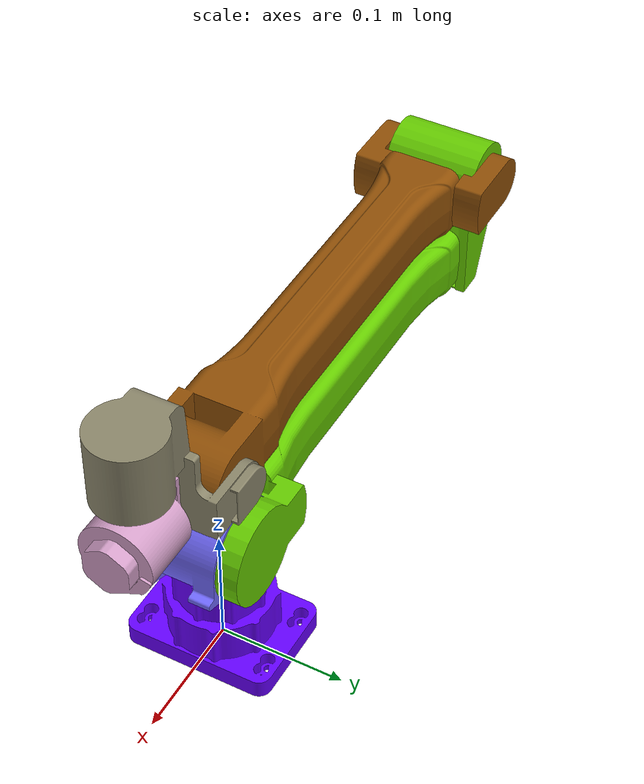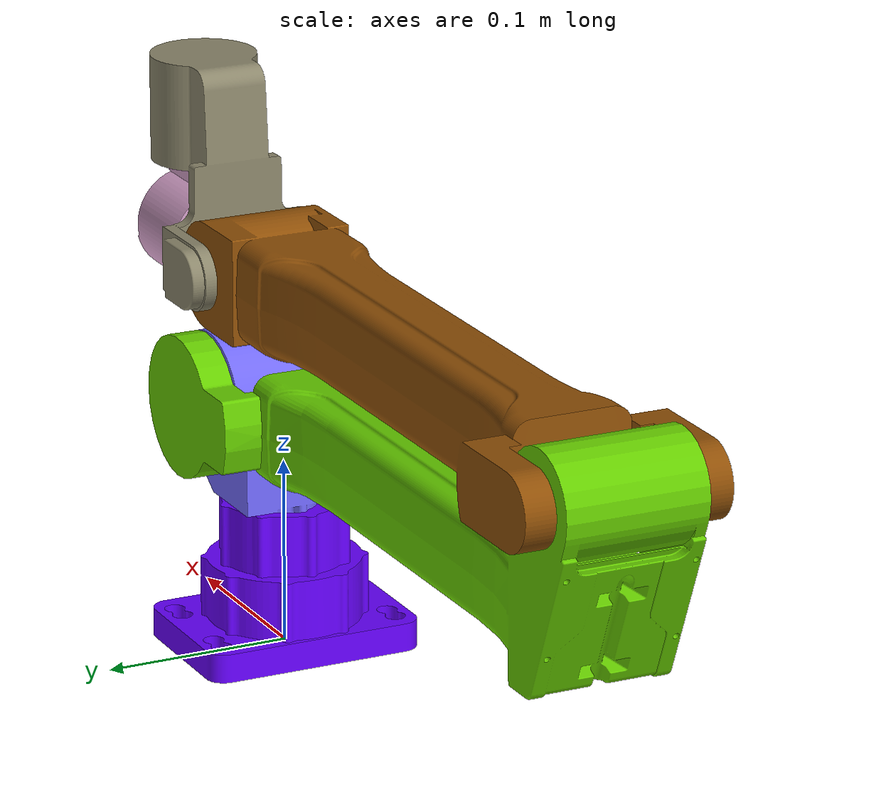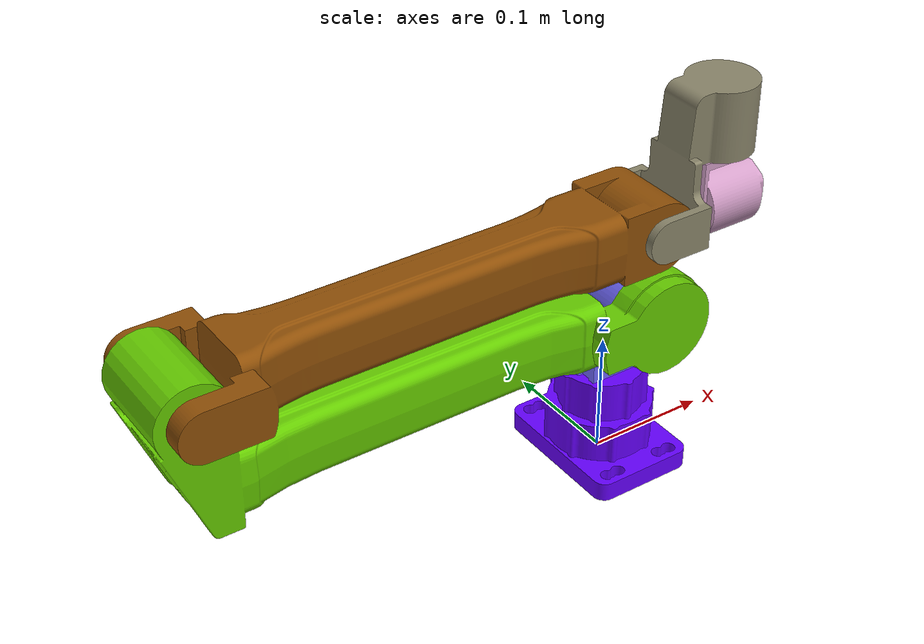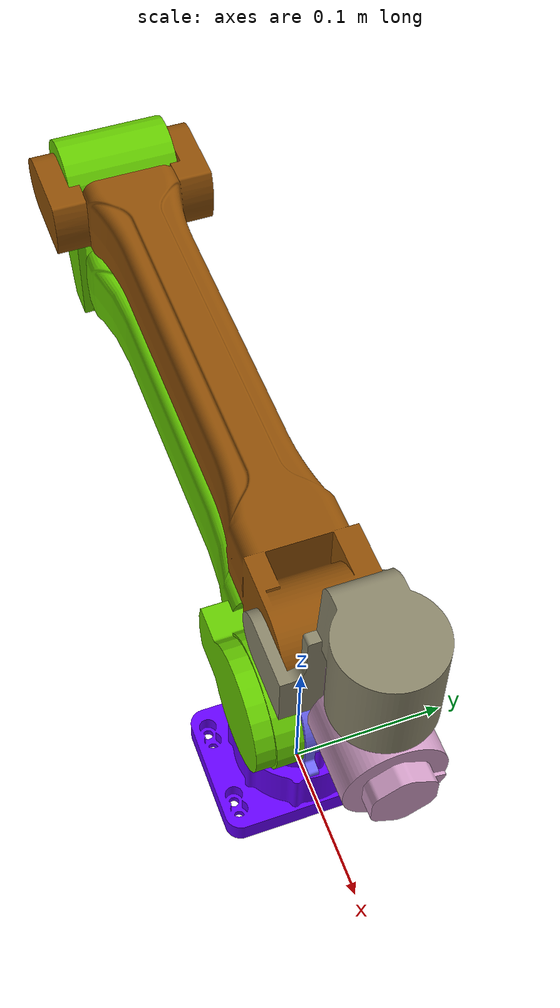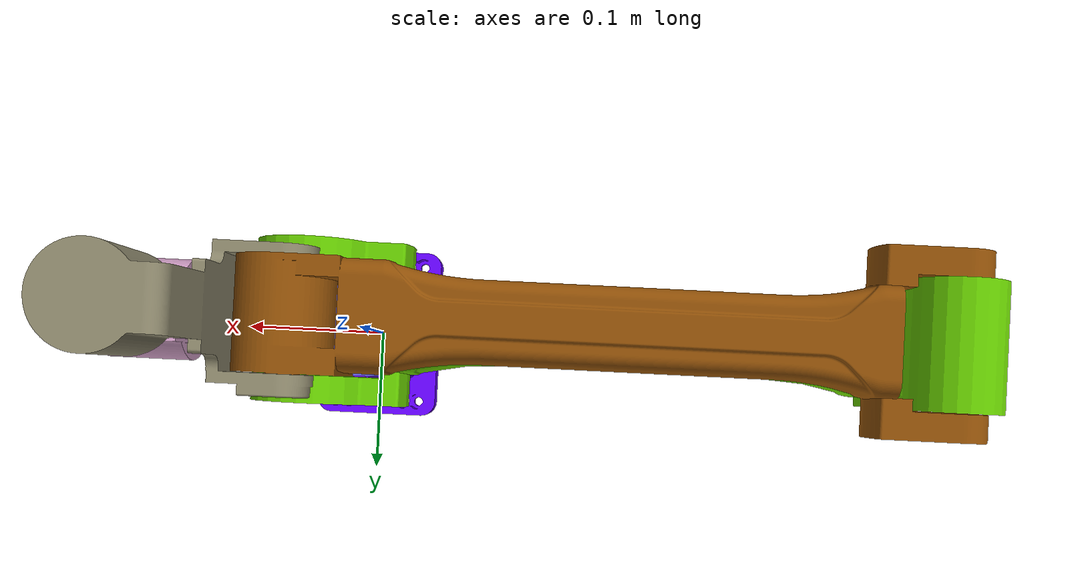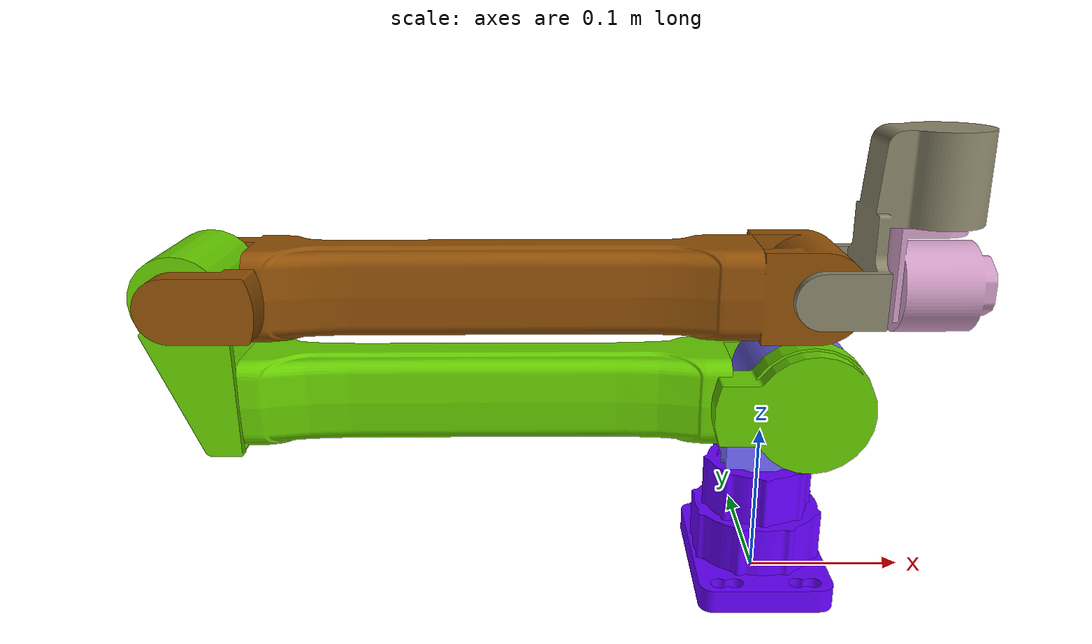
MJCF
<mujoco model="big_yam">
  <compiler angle="radian" meshdir="assets" />
  <size njmax="500" nconmax="100" />
  <asset>
    <mesh name="base" file="base.stl" />
    <mesh name="link1" file="link1.stl" />
    <mesh name="link2" file="link2.stl" />
    <mesh name="link3" file="link3.stl" />
    <mesh name="link4" file="link4.stl" />
    <mesh name="link5" file="link5.stl" />
  </asset>
  <worldbody>
    <geom pos="-0.00307547 0.06 0" quat="0.707105 0.707108 0 0" type="mesh" rgba="0.4 0 1 1" mesh="base" />
    <body name="link1" pos="0 0 0.0666" quat="1.32679e-06 1 0 0">
      <inertial pos="0.0175642 -0.00563025 -0.0562098" quat="0.678248 -0.204848 -0.198002 0.677357" mass="0.87455" diaginertia="0.000898881 0.000803161 0.000520933" />
      <joint name="joint1" pos="0 0 0" axis="0 0 -1" range="-2.87979 2.87979" actuatorfrcrange="-10 10" />
      <geom pos="-0.00307547 -0.06 0.0666" quat="0.707105 -0.707108 0 0" type="mesh" rgba="0.447059 0.415686 1 1" mesh="link1" />
      <body name="link2" pos="0.0219115 0.022425 -0.0639519" quat="0.707105 0.707108 0 0">
        <inertial pos="-0.196912 -0.0105 0.0197601" quat="-0.0560785 0.711155 0.0195557 0.700523" mass="1.29451" diaginertia="0.0248628 0.0247129 0.00149704" />
        <joint name="joint2" pos="0 0 0" axis="0 0 1" range="0 3.14159" actuatorfrcrange="-10 10" />
        <geom pos="-0.024987 0.130552 0.082425" quat="1.32679e-06 1 0 0" type="mesh" rgba="0.4 0.8 0 1" mesh="link2" />
        <body name="link3" pos="-0.378697 -0.068 0.05915" quat="1.32679e-06 -1 0 0">
          <inertial pos="0.211196 1.09757e-07 0.0377013" quat="0.499347 0.500652 0.501003 0.498996" mass="1.16452" diaginertia="0.0175944 0.0173976 0.000718047" />
          <joint name="joint3" pos="0 0 0" axis="0 0 1" range="0 3.01942" actuatorfrcrange="-10 10" />
          <geom pos="0.35371 -0.198552 -0.023275" quat="1 0 0 0" type="mesh" rgba="0.564706 0.313725 0.027451 1" mesh="link3" />
          <body name="link4" pos="0.381981 0 0.0695705" quat="1.32679e-06 -1 0 0">
            <inertial pos="0.0573241 -0.0534721 0.0332447" quat="0.634124 0.700571 0.200007 0.259006" mass="0.454929" diaginertia="0.000806274 0.00076961 0.000282065" />
            <joint name="joint4" pos="0 0 0" axis="0 0 -1" range="-1.69297 1.5708" actuatorfrcrange="-10 10" />
            <geom pos="-0.028271 0.198752 0.0923837" quat="1.32679e-06 1 0 0" type="mesh" rgba="0.545098 0.52549 0.419608 1" mesh="link4" />
            <body name="link5" pos="0.0739989 -0.0403003 0.0323887" quat="0.707105 0.707108 0 0">
              <inertial pos="0.000825911 3.55003e-05 -0.0375847" quat="0.288656 0.642392 0.646686 0.292929" mass="0.403307" diaginertia="0.000219794 0.000195686 0.000169647" />
              <joint name="joint5" pos="0 0 0" axis="0 0 -1" range="-1.5708 1.5708" actuatorfrcrange="-10 10" />
              <geom pos="-0.10227 0.059995 -0.239052" quat="0.707105 0.707108 0 0" type="mesh" rgba="0.827451 0.623529 0.784314 1" mesh="link5" />
              <body name="link6" pos="0.0356 -2.39858e-07 -0.0404996" quat="-0.49999816339744835 0.49999999999662681 0.50000183660255171 -0.49999999999662681">
                <inertial pos="0 0 0" mass="1e-6" diaginertia="1e-9 1e-9 1e-9" />
                <joint name="joint6" pos="0 0 0" axis="0 0 1" range="-2.0944 2.0944" actuatorfrcrange="-10 10" />
              </body>
            </body>
          </body>
        </body>
      </body>
    </body>
  </worldbody>
</mujoco>
